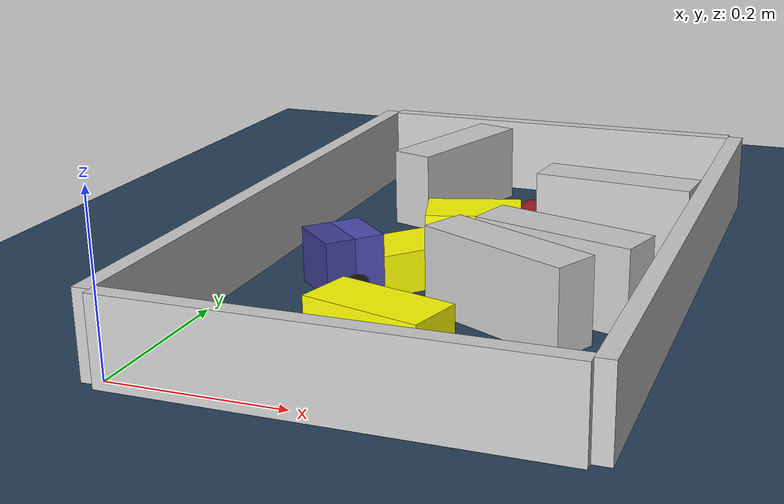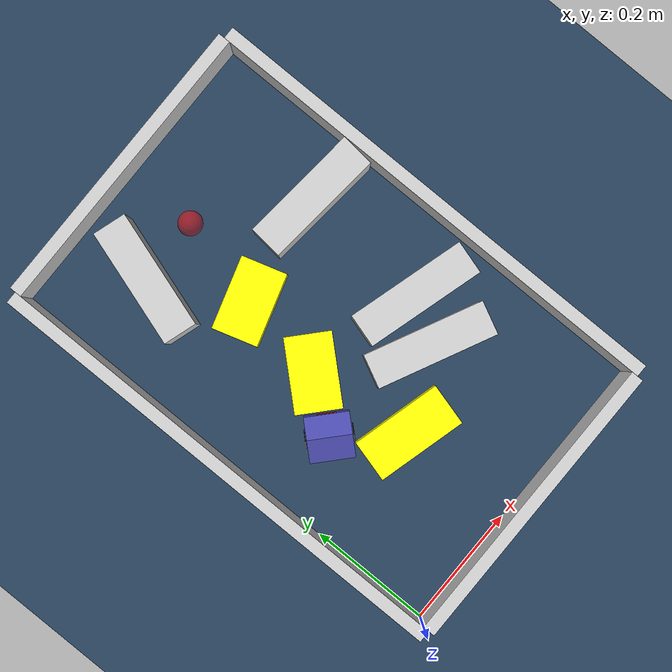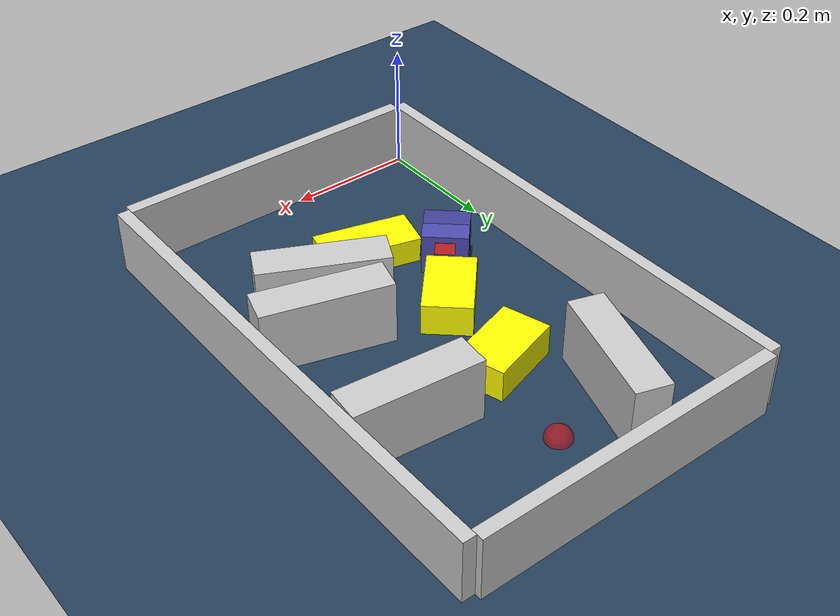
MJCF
<?xml version='1.0' encoding='utf-8'?>
<mujoco model="real_buildable">
  <compiler angle="degree" />
  <option timestep="0.002" integrator="implicitfast" iterations="100" cone="elliptic" />
  <default>
    <geom density="1" />
  </default>
  <asset>
    <texture builtin="gradient" height="3072" rgb1="0.3 0.5 0.7" rgb2="0 0 0" type="skybox" width="512" />
    <texture builtin="checker" height="300" mark="edge" markrgb="0.8 0.8 0.8" name="groundplane" rgb1="0.2 0.3 0.4" rgb2="0.1 0.2 0.3" type="2d" width="300" />
    <material name="groundplane" reflectance="0.2" texrepeat="5 5" texture="groundplane" texuniform="true" />
  </asset>
  <worldbody>
    <light dir="0 0 -1" directional="true" pos="0 0 1.5" />
    <geom name="floor" type="plane" condim="4" friction="0.5 0.005 0.001" material="groundplane" size="0 0 0.05" />
    <body name="walls">
      <geom name="wall_boundary_left" type="box" condim="4" friction="1.0 0.005 0.0001" rgba="0.8 0.8 0.8 1" pos="-0.010000 0.387500 0.050000" euler="0 0 0.000000" size="0.010000 0.397500 0.050000" />
      <geom name="wall_boundary_right" type="box" condim="4" friction="1.0 0.005 0.0001" rgba="0.8 0.8 0.8 1" pos="0.500000 0.387500 0.050000" euler="0 0 0.000000" size="0.010000 0.397500 0.050000" />
      <geom name="wall_boundary_bottom" type="box" condim="4" friction="1.0 0.005 0.0001" rgba="0.8 0.8 0.8 1" pos="0.245000 -0.010000 0.050000" euler="0 0 0.000000" size="0.245000 0.010000 0.050000" />
      <geom name="wall_boundary_top" type="box" condim="4" friction="1.0 0.005 0.0001" rgba="0.8 0.8 0.8 1" pos="0.245000 0.785000 0.050000" euler="0 0 0.000000" size="0.245000 0.010000 0.050000" />
      <geom name="wall_inner_1" type="box" condim="4" friction="1.0 0.005 0.0001" rgba="0.8 0.8 0.8 1" pos="0.331370 0.257484 0.050000" euler="0 0 153.905386" size="0.097500 0.027500 0.050000" />
      <geom name="wall_inner_2" type="box" condim="4" friction="1.0 0.005 0.0001" rgba="0.8 0.8 0.8 1" pos="0.375632 0.322384 0.050000" euler="0 0 163.808530" size="0.097500 0.027500 0.050000" />
      <geom name="wall_inner_3" type="box" condim="4" friction="1.0 0.005 0.0001" rgba="0.8 0.8 0.8 1" pos="0.390000 0.535000 0.050000" euler="0 0 174.400000" size="0.097500 0.027500 0.050000" />
      <geom name="wall_inner_4" type="box" condim="4" friction="1.0 0.005 0.0001" rgba="0.8 0.8 0.8 1" pos="0.137000 0.649000 0.050000" euler="0 0 72.300000" size="0.097500 0.027500 0.050000" />
    </body>
    <body name="car" pos="0.12859968372069586 0.28591202904674917 0.01" quat="0.91514373727422782 0 0 0.40312769704866347">
      <freejoint name="car_freejoint" />
      <inertial pos="0 0 0.0375" mass="0.35" diaginertia="0.000266 0.000266 0.000286" />
      <geom name="front_chassis_collision" type="box" pos="0.0175 0 0.0375" size="0.0175 0.035 0.0325" rgba="0.3 0.3 0.7 1" />
      <geom name="rear_chassis_collision" type="box" pos="-0.0175 0 0.0375" size="0.0175 0.035 0.0325" rgba="0.25 0.25 0.6 1" />
      <geom name="front_marker" type="box" pos="0.034 0 0.0505" size="0.002 0.015 0.01" rgba="1 0.2 0.2 1" contype="0" conaffinity="0" />
      <body name="rear_support_body" pos="-0.03 0 0.0025">
        <joint name="rear_caster_joint" type="ball" damping="0.0001" />
        <inertial pos="0 0 0" mass="0.025" diaginertia="0.000001 0.000001 0.000001" />
        <geom name="rear_support" type="sphere" pos="0 0 0" size="0.0025" friction="0 0 0" rgba="0.7 0.1 0.1 1" />
      </body>
      <body name="front_support_body" pos="0.03 0 0.0025">
        <joint name="front_caster_joint" type="ball" damping="0.0001" />
        <inertial pos="0 0 0" mass="0.025" diaginertia="0.000001 0.000001 0.000001" />
        <geom name="front_support" type="sphere" pos="0 0 0" size="0.0025" friction="0 0 0" rgba="0.1 0.7 0.1 1" />
      </body>
      <body name="left_wheel" pos="0 0.0375 0.015">
        <inertial pos="0 0 0" mass="0.05" diaginertia="0.000003 0.000006 0.000003" />
        <joint name="left_wheel_joint" type="hinge" axis="0 1 0" damping="0.01" armature="0.0001" />
        <geom name="left_wheel_collision" type="cylinder" size="0.015 0.0005" euler="90 0 0" rgba="0.1 0.1 0.1 1" />
      </body>
      <body name="right_wheel" pos="0 -0.0375 0.015">
        <inertial pos="0 0 0" mass="0.05" diaginertia="0.000003 0.000006 0.000003" />
        <joint name="right_wheel_joint" type="hinge" axis="0 1 0" damping="0.01" armature="0.0001" />
        <geom name="right_wheel_collision" type="cylinder" size="0.015 0.0005" euler="90 0 0" rgba="0.1 0.1 0.1 1" />
      </body>
    </body>
    <body name="obstacle_0_movable">
      <geom name="obstacle_0_movable" condim="4" pos="0.18718511262044962 0.36593906146862198 0.025000000000000001" friction="1 0.005 0.0001" rgba="1 1 0 1" size="0.037500 0.060000 0.025000" type="box" mass="0.1" quat="0.36098906176034129 0 0 0.93257004953482636" />
      <joint type="free" />
    </body>
    <body name="obstacle_1_movable">
      <geom name="obstacle_1_movable" condim="4" pos="0.21000000000000016 0.50999999999999934 0.025000000000000001" friction="1 0.005 0.0001" rgba="1 1 0 1" size="0.037500 0.060000 0.025000" type="box" mass="0.1" quat="0.80281747519111457 0 0 -0.59622487496561583" />
      <joint type="free" />
    </body>
    <body name="obstacle_2_movable">
      <geom name="obstacle_2_movable" condim="4" pos="0.20880375790136976 0.19511029708247227 0.02" friction="1 0.005 0.0001" rgba="1 1 0 1" size="0.035000 0.075000 0.020000" type="box" mass="0.1" quat="0.79353417003092086 0 0 0.60852569460404671" />
      <joint type="free" />
    </body>
    <site name="goal" type="sphere" pos="0.245000 0.660000 0.0" size="0.02" rgba="1 0 0 0.5" />
  </worldbody>
  <actuator>
    <velocity name="left_wheel_drive" joint="left_wheel_joint" ctrlrange="-25 25" kv="0.75" forcerange="-0.5 0.5" />
    <velocity name="right_wheel_drive" joint="right_wheel_joint" ctrlrange="-25 25" kv="0.75" forcerange="-0.5 0.5" />
  </actuator>
</mujoco>
